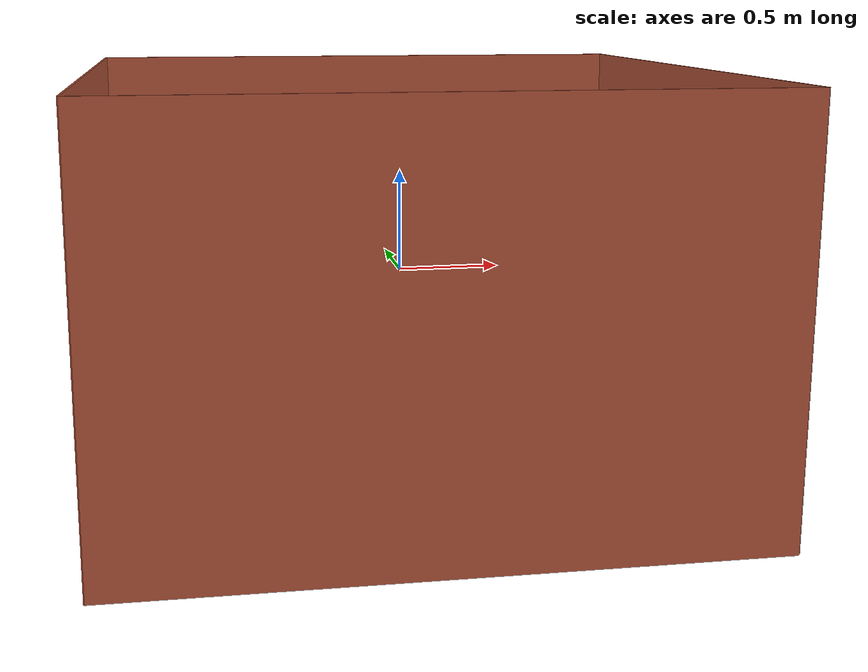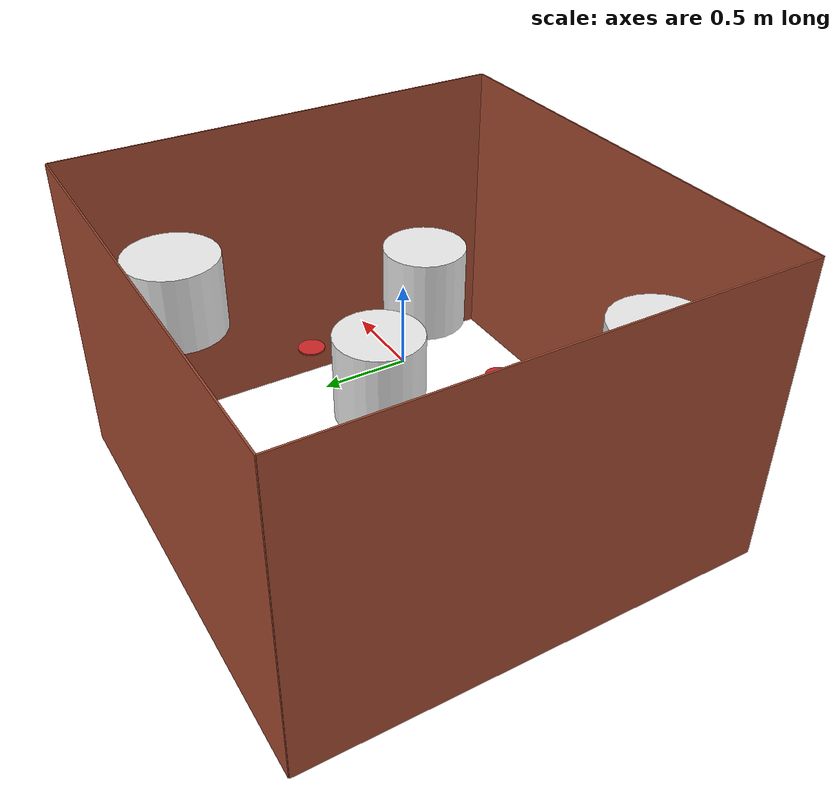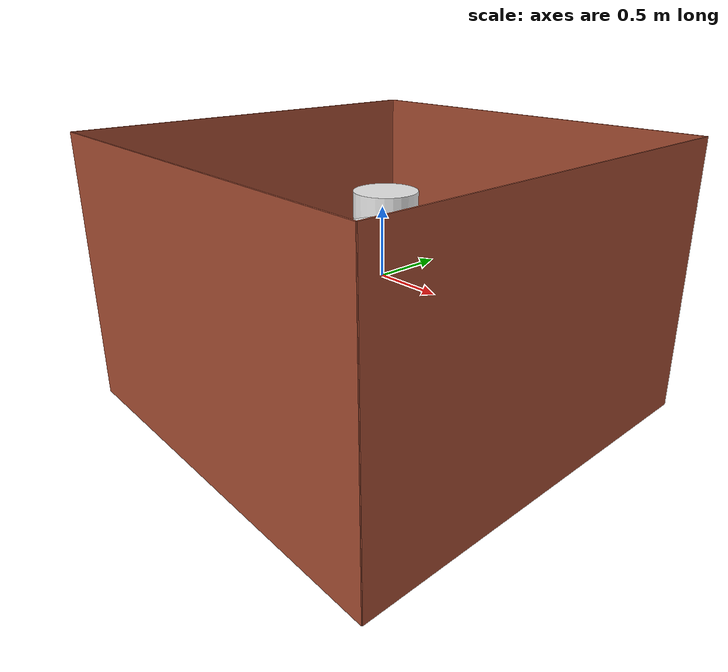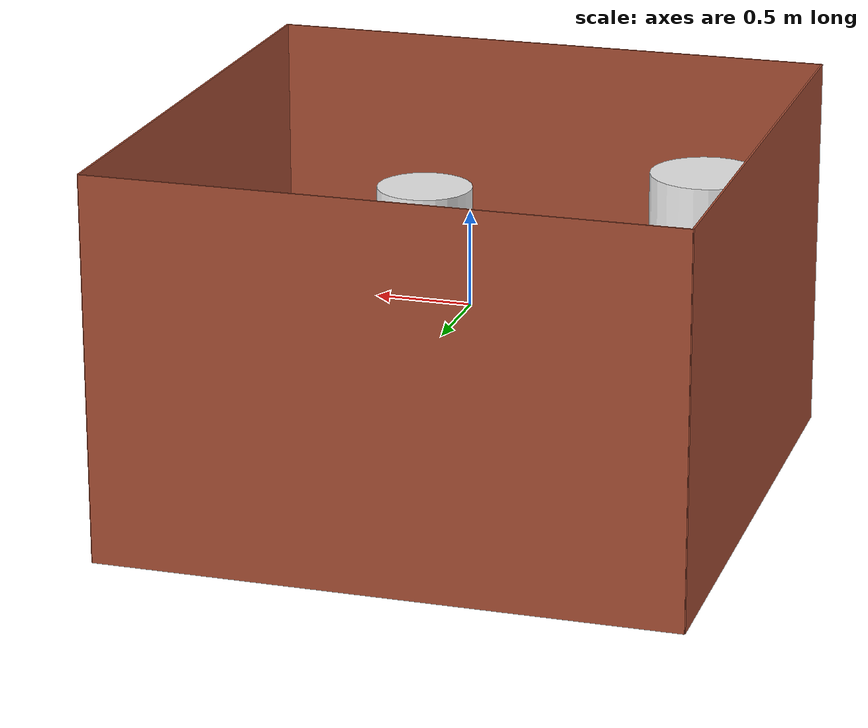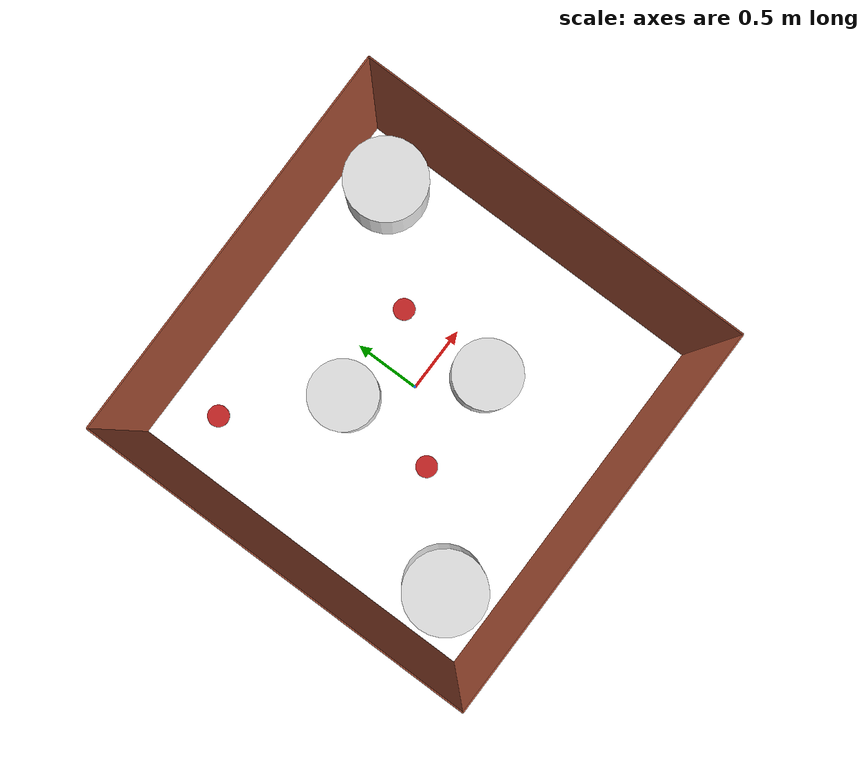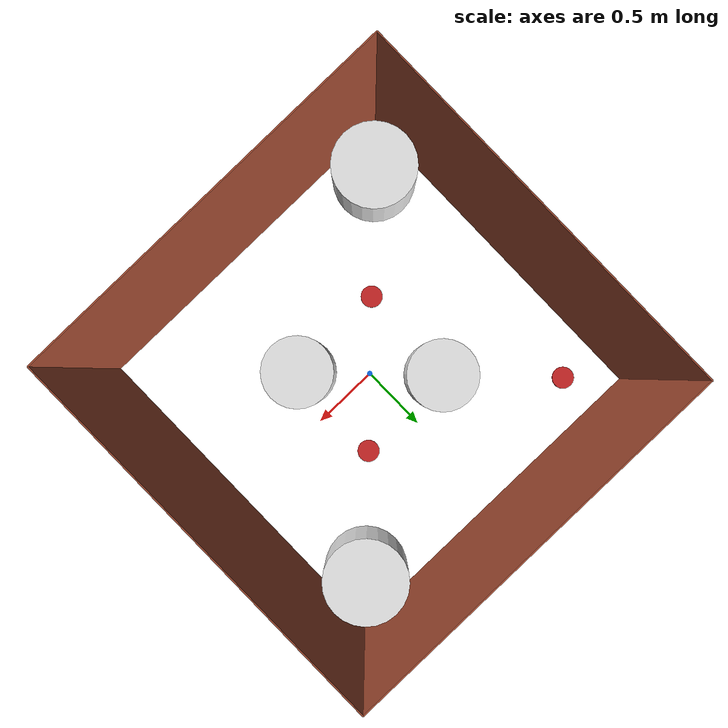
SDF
<sdf version='1.5'>
    <!-- Draw Circle -->
    <model name='ros_symbol'>
      <static>1</static>
      <link name='symbol'>
      	<visual name='goal_1'>
          <pose>0.4 0.4 0 0 0 0</pose>
          <geometry>
            <cylinder>
              <radius>0.08</radius>
              <length>0.01</length>
            </cylinder>
          </geometry>
          <material>
            <script>
              <uri>file://media/materials/scripts/gazebo.material</uri>
              <name>Gazebo/Red</name>
            </script>
          </material>
        </visual>

        <visual name='goal_2'>
          <pose>-0.4 -0.4 0 0 0 0</pose>
          <geometry>
            <cylinder>
              <radius>0.08</radius>
              <length>0.01</length>
            </cylinder>
          </geometry>
          <material>
            <script>
              <uri>file://media/materials/scripts/gazebo.material</uri>
              <name>Gazebo/Red</name>
            </script>
          </material>
        </visual>

        <visual name='goal_3'>
          <pose>-1 1 0 0 0 0</pose>
          <geometry>
            <cylinder>
              <radius>0.08</radius>
              <length>0.01</length>
            </cylinder>
          </geometry>
          <material>
            <script>
              <uri>file://media/materials/scripts/gazebo.material</uri>
              <name>Gazebo/Red</name>
            </script>
          </material>
        </visual>

        <collision name='obs_1'>
          <pose>0.35 -0.35 0.25 0 0 0</pose>
          <geometry>
            <cylinder>
              <radius>0.25</radius>
              <length>0.5</length>
            </cylinder>
          </geometry>
          <max_contacts>10</max_contacts>
          <surface>
            <bounce/>
            <friction>
              <ode/>
            </friction>
            <contact>
              <ode/>
            </contact>
          </surface>
        </collision>

        <visual name='obs_1'>
          <pose>0.35 -0.35 0.25 0 0 0</pose>
          <geometry>
            <cylinder>
              <radius>0.25</radius>
              <length>0.5</length>
            </cylinder>
          </geometry>
          <material>
            <script>
              <uri>file://media/materials/scripts/gazebo.material</uri>
              <name>Gazebo/White</name>
            </script>
          </material>
        </visual>

        <collision name='obs_2'>
          <pose>-1 -1 0.25 0 0 0</pose>
          <geometry>
            <cylinder>
              <radius>0.3</radius>
              <length>0.5</length>
            </cylinder>
          </geometry>
          <max_contacts>10</max_contacts>
          <surface>
            <bounce/>
            <friction>
              <ode/>
            </friction>
            <contact>
              <ode/>
            </contact>
          </surface>
        </collision>

        <visual name='obs_2'>
          <pose>-1 -1 0.25 0 0 0</pose>
          <geometry>
            <cylinder>
              <radius>0.3</radius>
              <length>0.5</length>
            </cylinder>
          </geometry>
          <material>
            <script>
              <uri>file://media/materials/scripts/gazebo.material</uri>
              <name>Gazebo/White</name>
            </script>
          </material>
        </visual>

        <collision name='obs_3'>
          <pose>-0.35 0.35 0.25 0 0 0</pose>
          <geometry>
            <cylinder>
              <radius>0.25</radius>
              <length>0.5</length>
            </cylinder>
          </geometry>
          <max_contacts>10</max_contacts>
          <surface>
            <bounce/>
            <friction>
              <ode/>
            </friction>
            <contact>
              <ode/>
            </contact>
          </surface>
        </collision>

        <visual name='obs_3'>
          <pose>-0.35 0.35 0.25 0 0 0</pose>
          <geometry>
            <cylinder>
              <radius>0.25</radius>
              <length>0.5</length>
            </cylinder>
          </geometry>
          <material>
            <script>
              <uri>file://media/materials/scripts/gazebo.material</uri>
              <name>Gazebo/White</name>
            </script>
          </material>
        </visual>

        <collision name='obs_4'>
          <pose>1 1 0.25 0 0 0</pose>
          <geometry>
            <cylinder>
              <radius>0.3</radius>
              <length>0.5</length>
            </cylinder>
          </geometry>
          <max_contacts>10</max_contacts>
          <surface>
            <bounce/>
            <friction>
              <ode/>
            </friction>
            <contact>
              <ode/>
            </contact>
          </surface>
        </collision>

        <visual name='obs_4'>
          <pose>1 1 0.25 0 0 0</pose>
          <geometry>
            <cylinder>
              <radius>0.3</radius>
              <length>0.5</length>
            </cylinder>
          </geometry>
          <material>
            <script>
              <uri>file://media/materials/scripts/gazebo.material</uri>
              <name>Gazebo/White</name>
            </script>
          </material>
        </visual>

	<!-- Draw Walls -->
      	<collision name="wall_1">
      	<pose>1.5 0 0 0 0 0</pose>
        <geometry>
          <box>
            <size>0.01 3.0 2.0</size>
          </box>
        </geometry>
        <max_contacts>10</max_contacts>
          <surface>
            <bounce/>
            <friction>
              <ode/>
            </friction>
            <contact>
              <ode/>
            </contact>
          </surface>
      </collision>

      <visual name="wall_1">
      <pose>1.5 0 0 0 0 0</pose>
        <geometry>
          <box>
            <size>0.01 3.0 2.0</size>
          </box>
        </geometry>
        <material>
          <script>
            <uri>file://media/materials/scripts/gazebo.material</uri>
            <name>Gazebo/Bricks</name>
          </script>
          <ambient>1 1 1 1</ambient>
          <diffuse>1 1 1 1</diffuse>
          <specular>0.2 0.2 0.2 1</specular>
          <emissive>0 0 0 1</emissive>
        </material>
      </visual>

      <collision name="wall_2">
      	<pose>-1.5 0 0 0 0 0</pose>
        <geometry>
          <box>
            <size>0.01 3.0 2.0</size>
          </box>
        </geometry>
        <max_contacts>10</max_contacts>
          <surface>
            <bounce/>
            <friction>
              <ode/>
            </friction>
            <contact>
              <ode/>
            </contact>
          </surface>
      </collision>

      <visual name="wall_2">
      	<pose>-1.5 0 0 0 0 0</pose>
        <geometry>
          <box>
            <size>0.01 3.0 2.0</size>
          </box>
        </geometry>
        <material>
          <script>
            <uri>file://media/materials/scripts/gazebo.material</uri>
            <name>Gazebo/Bricks</name>
          </script>
          <ambient>1 1 1 1</ambient>
          <diffuse>1 1 1 1</diffuse>
          <specular>0.2 0.2 0.2 1</specular>
          <emissive>0 0 0 1</emissive>
        </material>
      </visual>

      <collision name="wall_3">
      	<pose>0 1.5 0 0 0 0</pose>
        <geometry>
          <box>
            <size>3.0 0.01 2.0</size>
          </box>
        </geometry>
        <max_contacts>10</max_contacts>
          <surface>
            <bounce/>
            <friction>
              <ode/>
            </friction>
            <contact>
              <ode/>
            </contact>
          </surface>
      </collision>

      <visual name="wall_3">
      	<pose>0 1.5 0 0 0 0</pose>
        <geometry>
          <box>
            <size>3.0 0.01 2.0</size>
          </box>
        </geometry>
        <material>
          <script>
            <uri>file://media/materials/scripts/gazebo.material</uri>
            <name>Gazebo/Bricks</name>
          </script>
          <ambient>1 1 1 1</ambient>
          <diffuse>1 1 1 1</diffuse>
          <specular>0.2 0.2 0.2 1</specular>
          <emissive>0 0 0 1</emissive>
        </material>
      </visual>

      <collision name="wall_4">
      	<pose>0 -1.5 0 0 0 0</pose>
        <geometry>
          <box>
            <size>3.0 0.01 2.0</size>
          </box>
        </geometry>
        <max_contacts>10</max_contacts>
          <surface>
            <bounce/>
            <friction>
              <ode/>
            </friction>
            <contact>
              <ode/>
            </contact>
          </surface>
      </collision>

      <visual name="wall_4">
      	<pose>0 -1.5 0 0 0 0</pose>
        <geometry>
          <box>
            <size>3.0 0.01 2.0</size>
          </box>
        </geometry>
        <material>
          <script>
            <uri>file://media/materials/scripts/gazebo.material</uri>
            <name>Gazebo/Bricks</name>
          </script>
          <ambient>1 1 1 1</ambient>
          <diffuse>1 1 1 1</diffuse>
          <specular>0.2 0.2 0.2 1</specular>
          <emissive>0 0 0 1</emissive>
        </material>
      </visual>

    </link>
  </model>
</sdf>
